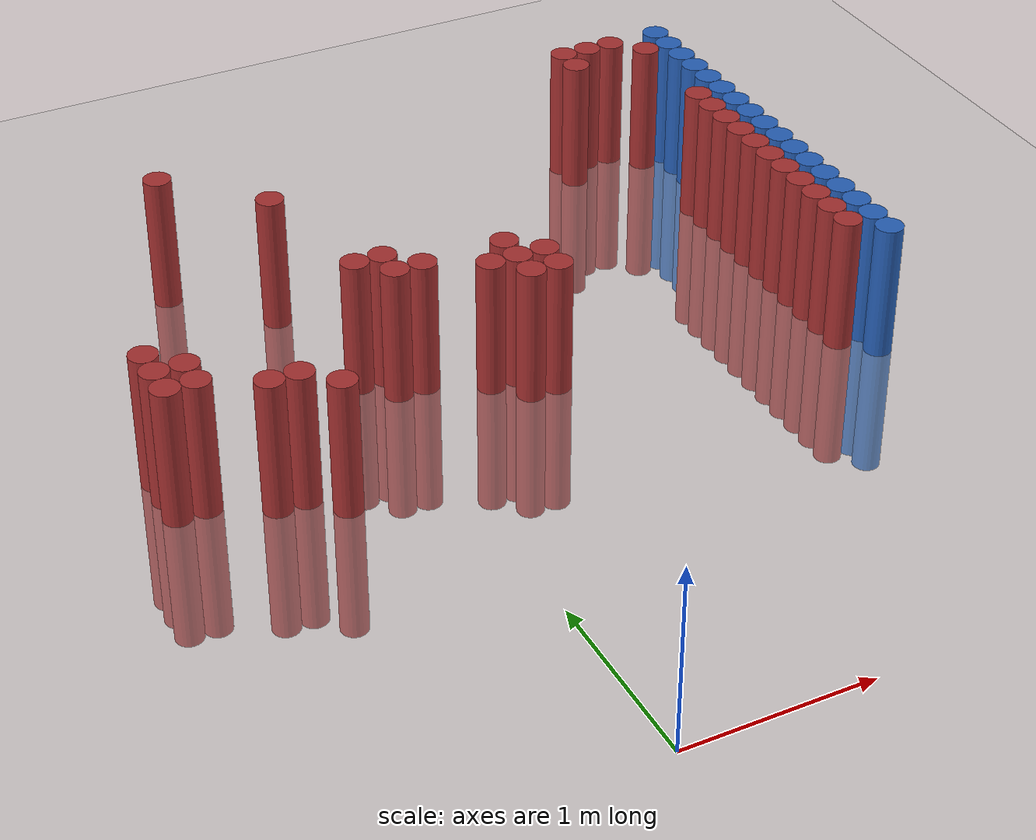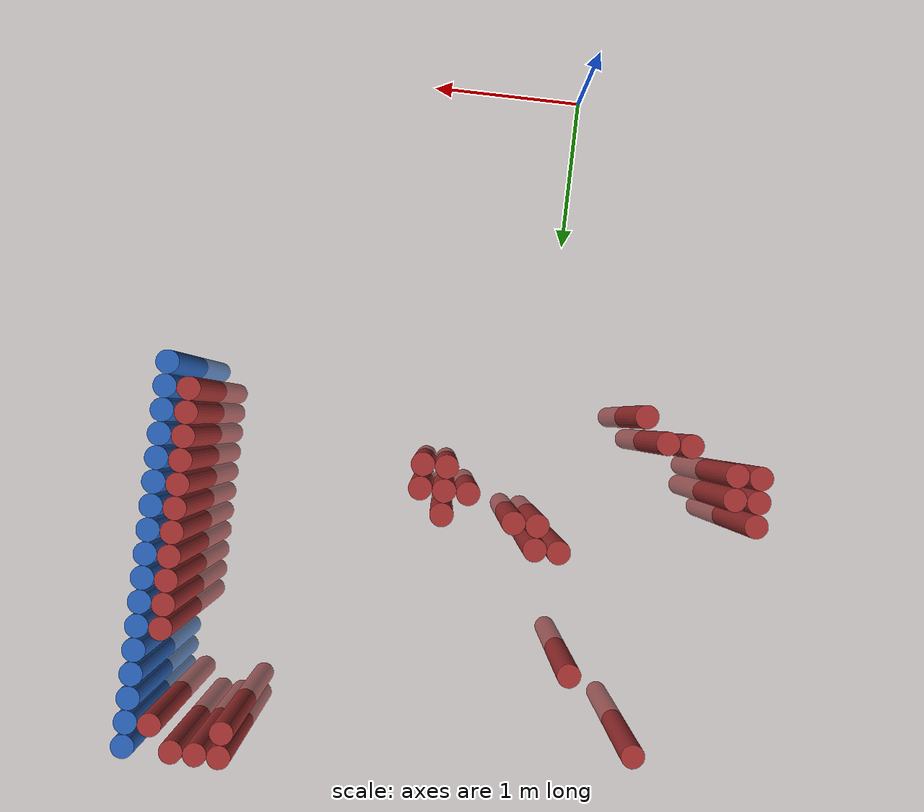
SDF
<sdf version="1.6">
 <world name="default">
  <model name="ground_plane">
   <static>1</static>
   <link name="link">
    <collision name="collision">
     <geometry><plane><normal>0 0 1</normal><size>100 100</size></plane></geometry>
     <surface><friction><ode><mu>100</mu><mu2>50</mu2></ode></friction></surface>
    </collision>
    <visual name="visual">
     <cast_shadows>0</cast_shadows>
     <geometry><plane><normal>0 0 1</normal><size>100 100</size></plane></geometry>
     <material>
      <script><uri>file://media/materials/scripts/gazebo.material</uri><name>Gazebo/Grey</name></script>
     </material>
    </visual>
   </link>
  </model>
  <model name="unit_cylinder_151">
   <static>1</static>
   <pose>-1.325000 2.425000 0.000000 0.000000 0.000000 0.000000</pose>
   <link name="link">
    <inertial>
     <mass>1</mass>
     <inertia><ixx>0.145833</ixx><ixy>0</ixy><ixz>0</ixz><iyy>0.145833</iyy><iyz>0</iyz><izz>0.125</izz></inertia>
    </inertial>
    <collision name="collision">
     <geometry><cylinder><radius>0.075000</radius><length>1.5</length></cylinder></geometry>
    </collision>
    <visual name="visual">
     <geometry><cylinder><radius>0.075000</radius><length>1.5</length></cylinder></geometry>
     <material>
      <ambient>0.648000 0.192000 0.192000 1</ambient>
      <diffuse>0.648000 0.192000 0.192000 1</diffuse>
     </material>
     <material>
      <script><name>Gazebo/Grey</name><uri>file://media/materials/scripts/gazebo.material</uri></script>
     </material>
    </visual>
   </link>
  </model>
  <model name="unit_cylinder_152">
   <static>1</static>
   <pose>-1.325000 2.575000 0.000000 0.000000 0.000000 0.000000</pose>
   <link name="link">
    <inertial>
     <mass>1</mass>
     <inertia><ixx>0.145833</ixx><ixy>0</ixy><ixz>0</ixz><iyy>0.145833</iyy><iyz>0</iyz><izz>0.125</izz></inertia>
    </inertial>
    <collision name="collision">
     <geometry><cylinder><radius>0.075000</radius><length>1.5</length></cylinder></geometry>
    </collision>
    <visual name="visual">
     <geometry><cylinder><radius>0.075000</radius><length>1.5</length></cylinder></geometry>
     <material>
      <ambient>0.648000 0.192000 0.192000 1</ambient>
      <diffuse>0.648000 0.192000 0.192000 1</diffuse>
     </material>
     <material>
      <script><name>Gazebo/Grey</name><uri>file://media/materials/scripts/gazebo.material</uri></script>
     </material>
    </visual>
   </link>
  </model>
  <model name="unit_cylinder_153">
   <static>1</static>
   <pose>-1.325000 2.725000 0.000000 0.000000 0.000000 0.000000</pose>
   <link name="link">
    <inertial>
     <mass>1</mass>
     <inertia><ixx>0.145833</ixx><ixy>0</ixy><ixz>0</ixz><iyy>0.145833</iyy><iyz>0</iyz><izz>0.125</izz></inertia>
    </inertial>
    <collision name="collision">
     <geometry><cylinder><radius>0.075000</radius><length>1.5</length></cylinder></geometry>
    </collision>
    <visual name="visual">
     <geometry><cylinder><radius>0.075000</radius><length>1.5</length></cylinder></geometry>
     <material>
      <ambient>0.648000 0.192000 0.192000 1</ambient>
      <diffuse>0.648000 0.192000 0.192000 1</diffuse>
     </material>
     <material>
      <script><name>Gazebo/Grey</name><uri>file://media/materials/scripts/gazebo.material</uri></script>
     </material>
    </visual>
   </link>
  </model>
  <model name="unit_cylinder_155">
   <static>1</static>
   <pose>-1.175000 2.425000 0.000000 0.000000 0.000000 0.000000</pose>
   <link name="link">
    <inertial>
     <mass>1</mass>
     <inertia><ixx>0.145833</ixx><ixy>0</ixy><ixz>0</ixz><iyy>0.145833</iyy><iyz>0</iyz><izz>0.125</izz></inertia>
    </inertial>
    <collision name="collision">
     <geometry><cylinder><radius>0.075000</radius><length>1.5</length></cylinder></geometry>
    </collision>
    <visual name="visual">
     <geometry><cylinder><radius>0.075000</radius><length>1.5</length></cylinder></geometry>
     <material>
      <ambient>0.648000 0.192000 0.192000 1</ambient>
      <diffuse>0.648000 0.192000 0.192000 1</diffuse>
     </material>
     <material>
      <script><name>Gazebo/Grey</name><uri>file://media/materials/scripts/gazebo.material</uri></script>
     </material>
    </visual>
   </link>
  </model>
  <model name="unit_cylinder_156">
   <static>1</static>
   <pose>-1.175000 2.575000 0.000000 0.000000 0.000000 0.000000</pose>
   <link name="link">
    <inertial>
     <mass>1</mass>
     <inertia><ixx>0.145833</ixx><ixy>0</ixy><ixz>0</ixz><iyy>0.145833</iyy><iyz>0</iyz><izz>0.125</izz></inertia>
    </inertial>
    <collision name="collision">
     <geometry><cylinder><radius>0.075000</radius><length>1.5</length></cylinder></geometry>
    </collision>
    <visual name="visual">
     <geometry><cylinder><radius>0.075000</radius><length>1.5</length></cylinder></geometry>
     <material>
      <ambient>0.648000 0.192000 0.192000 1</ambient>
      <diffuse>0.648000 0.192000 0.192000 1</diffuse>
     </material>
     <material>
      <script><name>Gazebo/Grey</name><uri>file://media/materials/scripts/gazebo.material</uri></script>
     </material>
    </visual>
   </link>
  </model>
  <model name="unit_cylinder_160">
   <static>1</static>
   <pose>-0.875000 2.275000 0.000000 0.000000 0.000000 0.000000</pose>
   <link name="link">
    <inertial>
     <mass>1</mass>
     <inertia><ixx>0.145833</ixx><ixy>0</ixy><ixz>0</ixz><iyy>0.145833</iyy><iyz>0</iyz><izz>0.125</izz></inertia>
    </inertial>
    <collision name="collision">
     <geometry><cylinder><radius>0.075000</radius><length>1.5</length></cylinder></geometry>
    </collision>
    <visual name="visual">
     <geometry><cylinder><radius>0.075000</radius><length>1.5</length></cylinder></geometry>
     <material>
      <ambient>0.648000 0.192000 0.192000 1</ambient>
      <diffuse>0.648000 0.192000 0.192000 1</diffuse>
     </material>
     <material>
      <script><name>Gazebo/Grey</name><uri>file://media/materials/scripts/gazebo.material</uri></script>
     </material>
    </visual>
   </link>
  </model>
  <model name="unit_cylinder_164">
   <static>1</static>
   <pose>-0.725000 2.275000 0.000000 0.000000 0.000000 0.000000</pose>
   <link name="link">
    <inertial>
     <mass>1</mass>
     <inertia><ixx>0.145833</ixx><ixy>0</ixy><ixz>0</ixz><iyy>0.145833</iyy><iyz>0</iyz><izz>0.125</izz></inertia>
    </inertial>
    <collision name="collision">
     <geometry><cylinder><radius>0.075000</radius><length>1.5</length></cylinder></geometry>
    </collision>
    <visual name="visual">
     <geometry><cylinder><radius>0.075000</radius><length>1.5</length></cylinder></geometry>
     <material>
      <ambient>0.648000 0.192000 0.192000 1</ambient>
      <diffuse>0.648000 0.192000 0.192000 1</diffuse>
     </material>
     <material>
      <script><name>Gazebo/Grey</name><uri>file://media/materials/scripts/gazebo.material</uri></script>
     </material>
    </visual>
   </link>
  </model>
  <model name="unit_cylinder_165">
   <static>1</static>
   <pose>-0.725000 4.225000 0.000000 0.000000 0.000000 0.000000</pose>
   <link name="link">
    <inertial>
     <mass>1</mass>
     <inertia><ixx>0.145833</ixx><ixy>0</ixy><ixz>0</ixz><iyy>0.145833</iyy><iyz>0</iyz><izz>0.125</izz></inertia>
    </inertial>
    <collision name="collision">
     <geometry><cylinder><radius>0.075000</radius><length>1.5</length></cylinder></geometry>
    </collision>
    <visual name="visual">
     <geometry><cylinder><radius>0.075000</radius><length>1.5</length></cylinder></geometry>
     <material>
      <ambient>0.648000 0.192000 0.192000 1</ambient>
      <diffuse>0.648000 0.192000 0.192000 1</diffuse>
     </material>
     <material>
      <script><name>Gazebo/Grey</name><uri>file://media/materials/scripts/gazebo.material</uri></script>
     </material>
    </visual>
   </link>
  </model>
  <model name="unit_cylinder_168">
   <static>1</static>
   <pose>-0.575000 2.125000 0.000000 0.000000 0.000000 0.000000</pose>
   <link name="link">
    <inertial>
     <mass>1</mass>
     <inertia><ixx>0.145833</ixx><ixy>0</ixy><ixz>0</ixz><iyy>0.145833</iyy><iyz>0</iyz><izz>0.125</izz></inertia>
    </inertial>
    <collision name="collision">
     <geometry><cylinder><radius>0.075000</radius><length>1.5</length></cylinder></geometry>
    </collision>
    <visual name="visual">
     <geometry><cylinder><radius>0.075000</radius><length>1.5</length></cylinder></geometry>
     <material>
      <ambient>0.648000 0.192000 0.192000 1</ambient>
      <diffuse>0.648000 0.192000 0.192000 1</diffuse>
     </material>
     <material>
      <script><name>Gazebo/Grey</name><uri>file://media/materials/scripts/gazebo.material</uri></script>
     </material>
    </visual>
   </link>
  </model>
  <model name="unit_cylinder_173">
   <static>1</static>
   <pose>-0.275000 3.775000 0.000000 0.000000 0.000000 0.000000</pose>
   <link name="link">
    <inertial>
     <mass>1</mass>
     <inertia><ixx>0.145833</ixx><ixy>0</ixy><ixz>0</ixz><iyy>0.145833</iyy><iyz>0</iyz><izz>0.125</izz></inertia>
    </inertial>
    <collision name="collision">
     <geometry><cylinder><radius>0.075000</radius><length>1.5</length></cylinder></geometry>
    </collision>
    <visual name="visual">
     <geometry><cylinder><radius>0.075000</radius><length>1.5</length></cylinder></geometry>
     <material>
      <ambient>0.648000 0.192000 0.192000 1</ambient>
      <diffuse>0.648000 0.192000 0.192000 1</diffuse>
     </material>
     <material>
      <script><name>Gazebo/Grey</name><uri>file://media/materials/scripts/gazebo.material</uri></script>
     </material>
    </visual>
   </link>
  </model>
  <model name="unit_cylinder_179">
   <static>1</static>
   <pose>-0.125000 3.025000 0.000000 0.000000 0.000000 0.000000</pose>
   <link name="link">
    <inertial>
     <mass>1</mass>
     <inertia><ixx>0.145833</ixx><ixy>0</ixy><ixz>0</ixz><iyy>0.145833</iyy><iyz>0</iyz><izz>0.125</izz></inertia>
    </inertial>
    <collision name="collision">
     <geometry><cylinder><radius>0.075000</radius><length>1.5</length></cylinder></geometry>
    </collision>
    <visual name="visual">
     <geometry><cylinder><radius>0.075000</radius><length>1.5</length></cylinder></geometry>
     <material>
      <ambient>0.648000 0.192000 0.192000 1</ambient>
      <diffuse>0.648000 0.192000 0.192000 1</diffuse>
     </material>
     <material>
      <script><name>Gazebo/Grey</name><uri>file://media/materials/scripts/gazebo.material</uri></script>
     </material>
    </visual>
   </link>
  </model>
  <model name="unit_cylinder_185">
   <static>1</static>
   <pose>0.025000 2.875000 0.000000 0.000000 0.000000 0.000000</pose>
   <link name="link">
    <inertial>
     <mass>1</mass>
     <inertia><ixx>0.145833</ixx><ixy>0</ixy><ixz>0</ixz><iyy>0.145833</iyy><iyz>0</iyz><izz>0.125</izz></inertia>
    </inertial>
    <collision name="collision">
     <geometry><cylinder><radius>0.075000</radius><length>1.5</length></cylinder></geometry>
    </collision>
    <visual name="visual">
     <geometry><cylinder><radius>0.075000</radius><length>1.5</length></cylinder></geometry>
     <material>
      <ambient>0.648000 0.192000 0.192000 1</ambient>
      <diffuse>0.648000 0.192000 0.192000 1</diffuse>
     </material>
     <material>
      <script><name>Gazebo/Grey</name><uri>file://media/materials/scripts/gazebo.material</uri></script>
     </material>
    </visual>
   </link>
  </model>
  <model name="unit_cylinder_186">
   <static>1</static>
   <pose>0.025000 3.025000 0.000000 0.000000 0.000000 0.000000</pose>
   <link name="link">
    <inertial>
     <mass>1</mass>
     <inertia><ixx>0.145833</ixx><ixy>0</ixy><ixz>0</ixz><iyy>0.145833</iyy><iyz>0</iyz><izz>0.125</izz></inertia>
    </inertial>
    <collision name="collision">
     <geometry><cylinder><radius>0.075000</radius><length>1.5</length></cylinder></geometry>
    </collision>
    <visual name="visual">
     <geometry><cylinder><radius>0.075000</radius><length>1.5</length></cylinder></geometry>
     <material>
      <ambient>0.648000 0.192000 0.192000 1</ambient>
      <diffuse>0.648000 0.192000 0.192000 1</diffuse>
     </material>
     <material>
      <script><name>Gazebo/Grey</name><uri>file://media/materials/scripts/gazebo.material</uri></script>
     </material>
    </visual>
   </link>
  </model>
  <model name="unit_cylinder_188">
   <static>1</static>
   <pose>0.175000 2.875000 0.000000 0.000000 0.000000 0.000000</pose>
   <link name="link">
    <inertial>
     <mass>1</mass>
     <inertia><ixx>0.145833</ixx><ixy>0</ixy><ixz>0</ixz><iyy>0.145833</iyy><iyz>0</iyz><izz>0.125</izz></inertia>
    </inertial>
    <collision name="collision">
     <geometry><cylinder><radius>0.075000</radius><length>1.5</length></cylinder></geometry>
    </collision>
    <visual name="visual">
     <geometry><cylinder><radius>0.075000</radius><length>1.5</length></cylinder></geometry>
     <material>
      <ambient>0.648000 0.192000 0.192000 1</ambient>
      <diffuse>0.648000 0.192000 0.192000 1</diffuse>
     </material>
     <material>
      <script><name>Gazebo/Grey</name><uri>file://media/materials/scripts/gazebo.material</uri></script>
     </material>
    </visual>
   </link>
  </model>
  <model name="unit_cylinder_190">
   <static>1</static>
   <pose>0.475000 2.725000 0.000000 0.000000 0.000000 0.000000</pose>
   <link name="link">
    <inertial>
     <mass>1</mass>
     <inertia><ixx>0.145833</ixx><ixy>0</ixy><ixz>0</ixz><iyy>0.145833</iyy><iyz>0</iyz><izz>0.125</izz></inertia>
    </inertial>
    <collision name="collision">
     <geometry><cylinder><radius>0.075000</radius><length>1.5</length></cylinder></geometry>
    </collision>
    <visual name="visual">
     <geometry><cylinder><radius>0.075000</radius><length>1.5</length></cylinder></geometry>
     <material>
      <ambient>0.648000 0.192000 0.192000 1</ambient>
      <diffuse>0.648000 0.192000 0.192000 1</diffuse>
     </material>
     <material>
      <script><name>Gazebo/Grey</name><uri>file://media/materials/scripts/gazebo.material</uri></script>
     </material>
    </visual>
   </link>
  </model>
  <model name="unit_cylinder_191">
   <static>1</static>
   <pose>0.625000 2.575000 0.000000 0.000000 0.000000 0.000000</pose>
   <link name="link">
    <inertial>
     <mass>1</mass>
     <inertia><ixx>0.145833</ixx><ixy>0</ixy><ixz>0</ixz><iyy>0.145833</iyy><iyz>0</iyz><izz>0.125</izz></inertia>
    </inertial>
    <collision name="collision">
     <geometry><cylinder><radius>0.075000</radius><length>1.5</length></cylinder></geometry>
    </collision>
    <visual name="visual">
     <geometry><cylinder><radius>0.075000</radius><length>1.5</length></cylinder></geometry>
     <material>
      <ambient>0.648000 0.192000 0.192000 1</ambient>
      <diffuse>0.648000 0.192000 0.192000 1</diffuse>
     </material>
     <material>
      <script><name>Gazebo/Grey</name><uri>file://media/materials/scripts/gazebo.material</uri></script>
     </material>
    </visual>
   </link>
  </model>
  <model name="unit_cylinder_192">
   <static>1</static>
   <pose>0.625000 2.725000 0.000000 0.000000 0.000000 0.000000</pose>
   <link name="link">
    <inertial>
     <mass>1</mass>
     <inertia><ixx>0.145833</ixx><ixy>0</ixy><ixz>0</ixz><iyy>0.145833</iyy><iyz>0</iyz><izz>0.125</izz></inertia>
    </inertial>
    <collision name="collision">
     <geometry><cylinder><radius>0.075000</radius><length>1.5</length></cylinder></geometry>
    </collision>
    <visual name="visual">
     <geometry><cylinder><radius>0.075000</radius><length>1.5</length></cylinder></geometry>
     <material>
      <ambient>0.648000 0.192000 0.192000 1</ambient>
      <diffuse>0.648000 0.192000 0.192000 1</diffuse>
     </material>
     <material>
      <script><name>Gazebo/Grey</name><uri>file://media/materials/scripts/gazebo.material</uri></script>
     </material>
    </visual>
   </link>
  </model>
  <model name="unit_cylinder_193">
   <static>1</static>
   <pose>0.625000 2.875000 0.000000 0.000000 0.000000 0.000000</pose>
   <link name="link">
    <inertial>
     <mass>1</mass>
     <inertia><ixx>0.145833</ixx><ixy>0</ixy><ixz>0</ixz><iyy>0.145833</iyy><iyz>0</iyz><izz>0.125</izz></inertia>
    </inertial>
    <collision name="collision">
     <geometry><cylinder><radius>0.075000</radius><length>1.5</length></cylinder></geometry>
    </collision>
    <visual name="visual">
     <geometry><cylinder><radius>0.075000</radius><length>1.5</length></cylinder></geometry>
     <material>
      <ambient>0.648000 0.192000 0.192000 1</ambient>
      <diffuse>0.648000 0.192000 0.192000 1</diffuse>
     </material>
     <material>
      <script><name>Gazebo/Grey</name><uri>file://media/materials/scripts/gazebo.material</uri></script>
     </material>
    </visual>
   </link>
  </model>
  <model name="unit_cylinder_194">
   <static>1</static>
   <pose>0.775000 2.575000 0.000000 0.000000 0.000000 0.000000</pose>
   <link name="link">
    <inertial>
     <mass>1</mass>
     <inertia><ixx>0.145833</ixx><ixy>0</ixy><ixz>0</ixz><iyy>0.145833</iyy><iyz>0</iyz><izz>0.125</izz></inertia>
    </inertial>
    <collision name="collision">
     <geometry><cylinder><radius>0.075000</radius><length>1.5</length></cylinder></geometry>
    </collision>
    <visual name="visual">
     <geometry><cylinder><radius>0.075000</radius><length>1.5</length></cylinder></geometry>
     <material>
      <ambient>0.648000 0.192000 0.192000 1</ambient>
      <diffuse>0.648000 0.192000 0.192000 1</diffuse>
     </material>
     <material>
      <script><name>Gazebo/Grey</name><uri>file://media/materials/scripts/gazebo.material</uri></script>
     </material>
    </visual>
   </link>
  </model>
  <model name="unit_cylinder_195">
   <static>1</static>
   <pose>0.775000 2.725000 0.000000 0.000000 0.000000 0.000000</pose>
   <link name="link">
    <inertial>
     <mass>1</mass>
     <inertia><ixx>0.145833</ixx><ixy>0</ixy><ixz>0</ixz><iyy>0.145833</iyy><iyz>0</iyz><izz>0.125</izz></inertia>
    </inertial>
    <collision name="collision">
     <geometry><cylinder><radius>0.075000</radius><length>1.5</length></cylinder></geometry>
    </collision>
    <visual name="visual">
     <geometry><cylinder><radius>0.075000</radius><length>1.5</length></cylinder></geometry>
     <material>
      <ambient>0.648000 0.192000 0.192000 1</ambient>
      <diffuse>0.648000 0.192000 0.192000 1</diffuse>
     </material>
     <material>
      <script><name>Gazebo/Grey</name><uri>file://media/materials/scripts/gazebo.material</uri></script>
     </material>
    </visual>
   </link>
  </model>
  <model name="unit_cylinder_199">
   <static>1</static>
   <pose>1.825000 4.375000 0.000000 0.000000 0.000000 0.000000</pose>
   <link name="link">
    <inertial>
     <mass>1</mass>
     <inertia><ixx>0.145833</ixx><ixy>0</ixy><ixz>0</ixz><iyy>0.145833</iyy><iyz>0</iyz><izz>0.125</izz></inertia>
    </inertial>
    <collision name="collision">
     <geometry><cylinder><radius>0.075000</radius><length>1.5</length></cylinder></geometry>
    </collision>
    <visual name="visual">
     <geometry><cylinder><radius>0.075000</radius><length>1.5</length></cylinder></geometry>
     <material>
      <ambient>0.648000 0.192000 0.192000 1</ambient>
      <diffuse>0.648000 0.192000 0.192000 1</diffuse>
     </material>
     <material>
      <script><name>Gazebo/Grey</name><uri>file://media/materials/scripts/gazebo.material</uri></script>
     </material>
    </visual>
   </link>
  </model>
  <model name="unit_cylinder_200">
   <static>1</static>
   <pose>1.825000 4.525000 0.000000 0.000000 0.000000 0.000000</pose>
   <link name="link">
    <inertial>
     <mass>1</mass>
     <inertia><ixx>0.145833</ixx><ixy>0</ixy><ixz>0</ixz><iyy>0.145833</iyy><iyz>0</iyz><izz>0.125</izz></inertia>
    </inertial>
    <collision name="collision">
     <geometry><cylinder><radius>0.075000</radius><length>1.5</length></cylinder></geometry>
    </collision>
    <visual name="visual">
     <geometry><cylinder><radius>0.075000</radius><length>1.5</length></cylinder></geometry>
     <material>
      <ambient>0.648000 0.192000 0.192000 1</ambient>
      <diffuse>0.648000 0.192000 0.192000 1</diffuse>
     </material>
     <material>
      <script><name>Gazebo/Grey</name><uri>file://media/materials/scripts/gazebo.material</uri></script>
     </material>
    </visual>
   </link>
  </model>
  <model name="unit_cylinder_201">
   <static>1</static>
   <pose>1.975000 4.525000 0.000000 0.000000 0.000000 0.000000</pose>
   <link name="link">
    <inertial>
     <mass>1</mass>
     <inertia><ixx>0.145833</ixx><ixy>0</ixy><ixz>0</ixz><iyy>0.145833</iyy><iyz>0</iyz><izz>0.125</izz></inertia>
    </inertial>
    <collision name="collision">
     <geometry><cylinder><radius>0.075000</radius><length>1.5</length></cylinder></geometry>
    </collision>
    <visual name="visual">
     <geometry><cylinder><radius>0.075000</radius><length>1.5</length></cylinder></geometry>
     <material>
      <ambient>0.648000 0.192000 0.192000 1</ambient>
      <diffuse>0.648000 0.192000 0.192000 1</diffuse>
     </material>
     <material>
      <script><name>Gazebo/Grey</name><uri>file://media/materials/scripts/gazebo.material</uri></script>
     </material>
    </visual>
   </link>
  </model>
  <model name="unit_cylinder_210">
   <static>1</static>
   <pose>2.125000 4.525000 0.000000 0.000000 0.000000 0.000000</pose>
   <link name="link">
    <inertial>
     <mass>1</mass>
     <inertia><ixx>0.145833</ixx><ixy>0</ixy><ixz>0</ixz><iyy>0.145833</iyy><iyz>0</iyz><izz>0.125</izz></inertia>
    </inertial>
    <collision name="collision">
     <geometry><cylinder><radius>0.075000</radius><length>1.5</length></cylinder></geometry>
    </collision>
    <visual name="visual">
     <geometry><cylinder><radius>0.075000</radius><length>1.5</length></cylinder></geometry>
     <material>
      <ambient>0.648000 0.192000 0.192000 1</ambient>
      <diffuse>0.648000 0.192000 0.192000 1</diffuse>
     </material>
     <material>
      <script><name>Gazebo/Grey</name><uri>file://media/materials/scripts/gazebo.material</uri></script>
     </material>
    </visual>
   </link>
  </model>
  <model name="unit_cylinder_219">
   <static>1</static>
   <pose>2.275000 2.275000 0.000000 0.000000 0.000000 0.000000</pose>
   <link name="link">
    <inertial>
     <mass>1</mass>
     <inertia><ixx>0.145833</ixx><ixy>0</ixy><ixz>0</ixz><iyy>0.145833</iyy><iyz>0</iyz><izz>0.125</izz></inertia>
    </inertial>
    <collision name="collision">
     <geometry><cylinder><radius>0.075000</radius><length>1.5</length></cylinder></geometry>
    </collision>
    <visual name="visual">
     <geometry><cylinder><radius>0.075000</radius><length>1.5</length></cylinder></geometry>
     <material>
      <ambient>0.648000 0.192000 0.192000 1</ambient>
      <diffuse>0.648000 0.192000 0.192000 1</diffuse>
     </material>
     <material>
      <script><name>Gazebo/Grey</name><uri>file://media/materials/scripts/gazebo.material</uri></script>
     </material>
    </visual>
   </link>
  </model>
  <model name="unit_cylinder_220">
   <static>1</static>
   <pose>2.275000 2.425000 0.000000 0.000000 0.000000 0.000000</pose>
   <link name="link">
    <inertial>
     <mass>1</mass>
     <inertia><ixx>0.145833</ixx><ixy>0</ixy><ixz>0</ixz><iyy>0.145833</iyy><iyz>0</iyz><izz>0.125</izz></inertia>
    </inertial>
    <collision name="collision">
     <geometry><cylinder><radius>0.075000</radius><length>1.5</length></cylinder></geometry>
    </collision>
    <visual name="visual">
     <geometry><cylinder><radius>0.075000</radius><length>1.5</length></cylinder></geometry>
     <material>
      <ambient>0.648000 0.192000 0.192000 1</ambient>
      <diffuse>0.648000 0.192000 0.192000 1</diffuse>
     </material>
     <material>
      <script><name>Gazebo/Grey</name><uri>file://media/materials/scripts/gazebo.material</uri></script>
     </material>
    </visual>
   </link>
  </model>
  <model name="unit_cylinder_221">
   <static>1</static>
   <pose>2.275000 2.575000 0.000000 0.000000 0.000000 0.000000</pose>
   <link name="link">
    <inertial>
     <mass>1</mass>
     <inertia><ixx>0.145833</ixx><ixy>0</ixy><ixz>0</ixz><iyy>0.145833</iyy><iyz>0</iyz><izz>0.125</izz></inertia>
    </inertial>
    <collision name="collision">
     <geometry><cylinder><radius>0.075000</radius><length>1.5</length></cylinder></geometry>
    </collision>
    <visual name="visual">
     <geometry><cylinder><radius>0.075000</radius><length>1.5</length></cylinder></geometry>
     <material>
      <ambient>0.648000 0.192000 0.192000 1</ambient>
      <diffuse>0.648000 0.192000 0.192000 1</diffuse>
     </material>
     <material>
      <script><name>Gazebo/Grey</name><uri>file://media/materials/scripts/gazebo.material</uri></script>
     </material>
    </visual>
   </link>
  </model>
  <model name="unit_cylinder_222">
   <static>1</static>
   <pose>2.275000 2.725000 0.000000 0.000000 0.000000 0.000000</pose>
   <link name="link">
    <inertial>
     <mass>1</mass>
     <inertia><ixx>0.145833</ixx><ixy>0</ixy><ixz>0</ixz><iyy>0.145833</iyy><iyz>0</iyz><izz>0.125</izz></inertia>
    </inertial>
    <collision name="collision">
     <geometry><cylinder><radius>0.075000</radius><length>1.5</length></cylinder></geometry>
    </collision>
    <visual name="visual">
     <geometry><cylinder><radius>0.075000</radius><length>1.5</length></cylinder></geometry>
     <material>
      <ambient>0.648000 0.192000 0.192000 1</ambient>
      <diffuse>0.648000 0.192000 0.192000 1</diffuse>
     </material>
     <material>
      <script><name>Gazebo/Grey</name><uri>file://media/materials/scripts/gazebo.material</uri></script>
     </material>
    </visual>
   </link>
  </model>
  <model name="unit_cylinder_223">
   <static>1</static>
   <pose>2.275000 2.875000 0.000000 0.000000 0.000000 0.000000</pose>
   <link name="link">
    <inertial>
     <mass>1</mass>
     <inertia><ixx>0.145833</ixx><ixy>0</ixy><ixz>0</ixz><iyy>0.145833</iyy><iyz>0</iyz><izz>0.125</izz></inertia>
    </inertial>
    <collision name="collision">
     <geometry><cylinder><radius>0.075000</radius><length>1.5</length></cylinder></geometry>
    </collision>
    <visual name="visual">
     <geometry><cylinder><radius>0.075000</radius><length>1.5</length></cylinder></geometry>
     <material>
      <ambient>0.648000 0.192000 0.192000 1</ambient>
      <diffuse>0.648000 0.192000 0.192000 1</diffuse>
     </material>
     <material>
      <script><name>Gazebo/Grey</name><uri>file://media/materials/scripts/gazebo.material</uri></script>
     </material>
    </visual>
   </link>
  </model>
  <model name="unit_cylinder_224">
   <static>1</static>
   <pose>2.275000 3.025000 0.000000 0.000000 0.000000 0.000000</pose>
   <link name="link">
    <inertial>
     <mass>1</mass>
     <inertia><ixx>0.145833</ixx><ixy>0</ixy><ixz>0</ixz><iyy>0.145833</iyy><iyz>0</iyz><izz>0.125</izz></inertia>
    </inertial>
    <collision name="collision">
     <geometry><cylinder><radius>0.075000</radius><length>1.5</length></cylinder></geometry>
    </collision>
    <visual name="visual">
     <geometry><cylinder><radius>0.075000</radius><length>1.5</length></cylinder></geometry>
     <material>
      <ambient>0.648000 0.192000 0.192000 1</ambient>
      <diffuse>0.648000 0.192000 0.192000 1</diffuse>
     </material>
     <material>
      <script><name>Gazebo/Grey</name><uri>file://media/materials/scripts/gazebo.material</uri></script>
     </material>
    </visual>
   </link>
  </model>
  <model name="unit_cylinder_225">
   <static>1</static>
   <pose>2.275000 3.175000 0.000000 0.000000 0.000000 0.000000</pose>
   <link name="link">
    <inertial>
     <mass>1</mass>
     <inertia><ixx>0.145833</ixx><ixy>0</ixy><ixz>0</ixz><iyy>0.145833</iyy><iyz>0</iyz><izz>0.125</izz></inertia>
    </inertial>
    <collision name="collision">
     <geometry><cylinder><radius>0.075000</radius><length>1.5</length></cylinder></geometry>
    </collision>
    <visual name="visual">
     <geometry><cylinder><radius>0.075000</radius><length>1.5</length></cylinder></geometry>
     <material>
      <ambient>0.648000 0.192000 0.192000 1</ambient>
      <diffuse>0.648000 0.192000 0.192000 1</diffuse>
     </material>
     <material>
      <script><name>Gazebo/Grey</name><uri>file://media/materials/scripts/gazebo.material</uri></script>
     </material>
    </visual>
   </link>
  </model>
  <model name="unit_cylinder_226">
   <static>1</static>
   <pose>2.275000 3.325000 0.000000 0.000000 0.000000 0.000000</pose>
   <link name="link">
    <inertial>
     <mass>1</mass>
     <inertia><ixx>0.145833</ixx><ixy>0</ixy><ixz>0</ixz><iyy>0.145833</iyy><iyz>0</iyz><izz>0.125</izz></inertia>
    </inertial>
    <collision name="collision">
     <geometry><cylinder><radius>0.075000</radius><length>1.5</length></cylinder></geometry>
    </collision>
    <visual name="visual">
     <geometry><cylinder><radius>0.075000</radius><length>1.5</length></cylinder></geometry>
     <material>
      <ambient>0.648000 0.192000 0.192000 1</ambient>
      <diffuse>0.648000 0.192000 0.192000 1</diffuse>
     </material>
     <material>
      <script><name>Gazebo/Grey</name><uri>file://media/materials/scripts/gazebo.material</uri></script>
     </material>
    </visual>
   </link>
  </model>
  <model name="unit_cylinder_227">
   <static>1</static>
   <pose>2.275000 3.475000 0.000000 0.000000 0.000000 0.000000</pose>
   <link name="link">
    <inertial>
     <mass>1</mass>
     <inertia><ixx>0.145833</ixx><ixy>0</ixy><ixz>0</ixz><iyy>0.145833</iyy><iyz>0</iyz><izz>0.125</izz></inertia>
    </inertial>
    <collision name="collision">
     <geometry><cylinder><radius>0.075000</radius><length>1.5</length></cylinder></geometry>
    </collision>
    <visual name="visual">
     <geometry><cylinder><radius>0.075000</radius><length>1.5</length></cylinder></geometry>
     <material>
      <ambient>0.648000 0.192000 0.192000 1</ambient>
      <diffuse>0.648000 0.192000 0.192000 1</diffuse>
     </material>
     <material>
      <script><name>Gazebo/Grey</name><uri>file://media/materials/scripts/gazebo.material</uri></script>
     </material>
    </visual>
   </link>
  </model>
  <model name="unit_cylinder_228">
   <static>1</static>
   <pose>2.275000 3.625000 0.000000 0.000000 0.000000 0.000000</pose>
   <link name="link">
    <inertial>
     <mass>1</mass>
     <inertia><ixx>0.145833</ixx><ixy>0</ixy><ixz>0</ixz><iyy>0.145833</iyy><iyz>0</iyz><izz>0.125</izz></inertia>
    </inertial>
    <collision name="collision">
     <geometry><cylinder><radius>0.075000</radius><length>1.5</length></cylinder></geometry>
    </collision>
    <visual name="visual">
     <geometry><cylinder><radius>0.075000</radius><length>1.5</length></cylinder></geometry>
     <material>
      <ambient>0.648000 0.192000 0.192000 1</ambient>
      <diffuse>0.648000 0.192000 0.192000 1</diffuse>
     </material>
     <material>
      <script><name>Gazebo/Grey</name><uri>file://media/materials/scripts/gazebo.material</uri></script>
     </material>
    </visual>
   </link>
  </model>
  <model name="unit_cylinder_229">
   <static>1</static>
   <pose>2.275000 3.775000 0.000000 0.000000 0.000000 0.000000</pose>
   <link name="link">
    <inertial>
     <mass>1</mass>
     <inertia><ixx>0.145833</ixx><ixy>0</ixy><ixz>0</ixz><iyy>0.145833</iyy><iyz>0</iyz><izz>0.125</izz></inertia>
    </inertial>
    <collision name="collision">
     <geometry><cylinder><radius>0.075000</radius><length>1.5</length></cylinder></geometry>
    </collision>
    <visual name="visual">
     <geometry><cylinder><radius>0.075000</radius><length>1.5</length></cylinder></geometry>
     <material>
      <ambient>0.648000 0.192000 0.192000 1</ambient>
      <diffuse>0.648000 0.192000 0.192000 1</diffuse>
     </material>
     <material>
      <script><name>Gazebo/Grey</name><uri>file://media/materials/scripts/gazebo.material</uri></script>
     </material>
    </visual>
   </link>
  </model>
  <model name="unit_cylinder_230">
   <static>1</static>
   <pose>2.275000 4.375000 0.000000 0.000000 0.000000 0.000000</pose>
   <link name="link">
    <inertial>
     <mass>1</mass>
     <inertia><ixx>0.145833</ixx><ixy>0</ixy><ixz>0</ixz><iyy>0.145833</iyy><iyz>0</iyz><izz>0.125</izz></inertia>
    </inertial>
    <collision name="collision">
     <geometry><cylinder><radius>0.075000</radius><length>1.5</length></cylinder></geometry>
    </collision>
    <visual name="visual">
     <geometry><cylinder><radius>0.075000</radius><length>1.5</length></cylinder></geometry>
     <material>
      <ambient>0.648000 0.192000 0.192000 1</ambient>
      <diffuse>0.648000 0.192000 0.192000 1</diffuse>
     </material>
     <material>
      <script><name>Gazebo/Grey</name><uri>file://media/materials/scripts/gazebo.material</uri></script>
     </material>
    </visual>
   </link>
  </model>
  <model name="unit_cylinder_244">
   <static>1</static>
   <pose>2.425000 2.125000 0.000000 0.000000 0.000000 0.000000</pose>
   <link name="link">
    <inertial>
     <mass>1</mass>
     <inertia><ixx>0.145833</ixx><ixy>0</ixy><ixz>0</ixz><iyy>0.145833</iyy><iyz>0</iyz><izz>0.125</izz></inertia>
    </inertial>
    <collision name="collision">
     <geometry><cylinder><radius>0.075000</radius><length>1.5</length></cylinder></geometry>
    </collision>
    <visual name="visual">
     <geometry><cylinder><radius>0.075000</radius><length>1.5</length></cylinder></geometry>
     <material>
      <ambient>0.152000 0.379000 0.720000 1</ambient>
      <diffuse>0.152000 0.379000 0.720000 1</diffuse>
     </material>
     <material>
      <script><name>Gazebo/Grey</name><uri>file://media/materials/scripts/gazebo.material</uri></script>
     </material>
    </visual>
   </link>
  </model>
  <model name="unit_cylinder_245">
   <static>1</static>
   <pose>2.425000 2.275000 0.000000 0.000000 0.000000 0.000000</pose>
   <link name="link">
    <inertial>
     <mass>1</mass>
     <inertia><ixx>0.145833</ixx><ixy>0</ixy><ixz>0</ixz><iyy>0.145833</iyy><iyz>0</iyz><izz>0.125</izz></inertia>
    </inertial>
    <collision name="collision">
     <geometry><cylinder><radius>0.075000</radius><length>1.5</length></cylinder></geometry>
    </collision>
    <visual name="visual">
     <geometry><cylinder><radius>0.075000</radius><length>1.5</length></cylinder></geometry>
     <material>
      <ambient>0.152000 0.379000 0.720000 1</ambient>
      <diffuse>0.152000 0.379000 0.720000 1</diffuse>
     </material>
     <material>
      <script><name>Gazebo/Grey</name><uri>file://media/materials/scripts/gazebo.material</uri></script>
     </material>
    </visual>
   </link>
  </model>
  <model name="unit_cylinder_246">
   <static>1</static>
   <pose>2.425000 2.425000 0.000000 0.000000 0.000000 0.000000</pose>
   <link name="link">
    <inertial>
     <mass>1</mass>
     <inertia><ixx>0.145833</ixx><ixy>0</ixy><ixz>0</ixz><iyy>0.145833</iyy><iyz>0</iyz><izz>0.125</izz></inertia>
    </inertial>
    <collision name="collision">
     <geometry><cylinder><radius>0.075000</radius><length>1.5</length></cylinder></geometry>
    </collision>
    <visual name="visual">
     <geometry><cylinder><radius>0.075000</radius><length>1.5</length></cylinder></geometry>
     <material>
      <ambient>0.152000 0.379000 0.720000 1</ambient>
      <diffuse>0.152000 0.379000 0.720000 1</diffuse>
     </material>
     <material>
      <script><name>Gazebo/Grey</name><uri>file://media/materials/scripts/gazebo.material</uri></script>
     </material>
    </visual>
   </link>
  </model>
  <model name="unit_cylinder_247">
   <static>1</static>
   <pose>2.425000 2.575000 0.000000 0.000000 0.000000 0.000000</pose>
   <link name="link">
    <inertial>
     <mass>1</mass>
     <inertia><ixx>0.145833</ixx><ixy>0</ixy><ixz>0</ixz><iyy>0.145833</iyy><iyz>0</iyz><izz>0.125</izz></inertia>
    </inertial>
    <collision name="collision">
     <geometry><cylinder><radius>0.075000</radius><length>1.5</length></cylinder></geometry>
    </collision>
    <visual name="visual">
     <geometry><cylinder><radius>0.075000</radius><length>1.5</length></cylinder></geometry>
     <material>
      <ambient>0.152000 0.379000 0.720000 1</ambient>
      <diffuse>0.152000 0.379000 0.720000 1</diffuse>
     </material>
     <material>
      <script><name>Gazebo/Grey</name><uri>file://media/materials/scripts/gazebo.material</uri></script>
     </material>
    </visual>
   </link>
  </model>
  <model name="unit_cylinder_248">
   <static>1</static>
   <pose>2.425000 2.725000 0.000000 0.000000 0.000000 0.000000</pose>
   <link name="link">
    <inertial>
     <mass>1</mass>
     <inertia><ixx>0.145833</ixx><ixy>0</ixy><ixz>0</ixz><iyy>0.145833</iyy><iyz>0</iyz><izz>0.125</izz></inertia>
    </inertial>
    <collision name="collision">
     <geometry><cylinder><radius>0.075000</radius><length>1.5</length></cylinder></geometry>
    </collision>
    <visual name="visual">
     <geometry><cylinder><radius>0.075000</radius><length>1.5</length></cylinder></geometry>
     <material>
      <ambient>0.152000 0.379000 0.720000 1</ambient>
      <diffuse>0.152000 0.379000 0.720000 1</diffuse>
     </material>
     <material>
      <script><name>Gazebo/Grey</name><uri>file://media/materials/scripts/gazebo.material</uri></script>
     </material>
    </visual>
   </link>
  </model>
  <model name="unit_cylinder_249">
   <static>1</static>
   <pose>2.425000 2.875000 0.000000 0.000000 0.000000 0.000000</pose>
   <link name="link">
    <inertial>
     <mass>1</mass>
     <inertia><ixx>0.145833</ixx><ixy>0</ixy><ixz>0</ixz><iyy>0.145833</iyy><iyz>0</iyz><izz>0.125</izz></inertia>
    </inertial>
    <collision name="collision">
     <geometry><cylinder><radius>0.075000</radius><length>1.5</length></cylinder></geometry>
    </collision>
    <visual name="visual">
     <geometry><cylinder><radius>0.075000</radius><length>1.5</length></cylinder></geometry>
     <material>
      <ambient>0.152000 0.379000 0.720000 1</ambient>
      <diffuse>0.152000 0.379000 0.720000 1</diffuse>
     </material>
     <material>
      <script><name>Gazebo/Grey</name><uri>file://media/materials/scripts/gazebo.material</uri></script>
     </material>
    </visual>
   </link>
  </model>
  <model name="unit_cylinder_250">
   <static>1</static>
   <pose>2.425000 3.025000 0.000000 0.000000 0.000000 0.000000</pose>
   <link name="link">
    <inertial>
     <mass>1</mass>
     <inertia><ixx>0.145833</ixx><ixy>0</ixy><ixz>0</ixz><iyy>0.145833</iyy><iyz>0</iyz><izz>0.125</izz></inertia>
    </inertial>
    <collision name="collision">
     <geometry><cylinder><radius>0.075000</radius><length>1.5</length></cylinder></geometry>
    </collision>
    <visual name="visual">
     <geometry><cylinder><radius>0.075000</radius><length>1.5</length></cylinder></geometry>
     <material>
      <ambient>0.152000 0.379000 0.720000 1</ambient>
      <diffuse>0.152000 0.379000 0.720000 1</diffuse>
     </material>
     <material>
      <script><name>Gazebo/Grey</name><uri>file://media/materials/scripts/gazebo.material</uri></script>
     </material>
    </visual>
   </link>
  </model>
  <model name="unit_cylinder_251">
   <static>1</static>
   <pose>2.425000 3.175000 0.000000 0.000000 0.000000 0.000000</pose>
   <link name="link">
    <inertial>
     <mass>1</mass>
     <inertia><ixx>0.145833</ixx><ixy>0</ixy><ixz>0</ixz><iyy>0.145833</iyy><iyz>0</iyz><izz>0.125</izz></inertia>
    </inertial>
    <collision name="collision">
     <geometry><cylinder><radius>0.075000</radius><length>1.5</length></cylinder></geometry>
    </collision>
    <visual name="visual">
     <geometry><cylinder><radius>0.075000</radius><length>1.5</length></cylinder></geometry>
     <material>
      <ambient>0.152000 0.379000 0.720000 1</ambient>
      <diffuse>0.152000 0.379000 0.720000 1</diffuse>
     </material>
     <material>
      <script><name>Gazebo/Grey</name><uri>file://media/materials/scripts/gazebo.material</uri></script>
     </material>
    </visual>
   </link>
  </model>
  <model name="unit_cylinder_252">
   <static>1</static>
   <pose>2.425000 3.325000 0.000000 0.000000 0.000000 0.000000</pose>
   <link name="link">
    <inertial>
     <mass>1</mass>
     <inertia><ixx>0.145833</ixx><ixy>0</ixy><ixz>0</ixz><iyy>0.145833</iyy><iyz>0</iyz><izz>0.125</izz></inertia>
    </inertial>
    <collision name="collision">
     <geometry><cylinder><radius>0.075000</radius><length>1.5</length></cylinder></geometry>
    </collision>
    <visual name="visual">
     <geometry><cylinder><radius>0.075000</radius><length>1.5</length></cylinder></geometry>
     <material>
      <ambient>0.152000 0.379000 0.720000 1</ambient>
      <diffuse>0.152000 0.379000 0.720000 1</diffuse>
     </material>
     <material>
      <script><name>Gazebo/Grey</name><uri>file://media/materials/scripts/gazebo.material</uri></script>
     </material>
    </visual>
   </link>
  </model>
  <model name="unit_cylinder_253">
   <static>1</static>
   <pose>2.425000 3.475000 0.000000 0.000000 0.000000 0.000000</pose>
   <link name="link">
    <inertial>
     <mass>1</mass>
     <inertia><ixx>0.145833</ixx><ixy>0</ixy><ixz>0</ixz><iyy>0.145833</iyy><iyz>0</iyz><izz>0.125</izz></inertia>
    </inertial>
    <collision name="collision">
     <geometry><cylinder><radius>0.075000</radius><length>1.5</length></cylinder></geometry>
    </collision>
    <visual name="visual">
     <geometry><cylinder><radius>0.075000</radius><length>1.5</length></cylinder></geometry>
     <material>
      <ambient>0.152000 0.379000 0.720000 1</ambient>
      <diffuse>0.152000 0.379000 0.720000 1</diffuse>
     </material>
     <material>
      <script><name>Gazebo/Grey</name><uri>file://media/materials/scripts/gazebo.material</uri></script>
     </material>
    </visual>
   </link>
  </model>
  <model name="unit_cylinder_254">
   <static>1</static>
   <pose>2.425000 3.625000 0.000000 0.000000 0.000000 0.000000</pose>
   <link name="link">
    <inertial>
     <mass>1</mass>
     <inertia><ixx>0.145833</ixx><ixy>0</ixy><ixz>0</ixz><iyy>0.145833</iyy><iyz>0</iyz><izz>0.125</izz></inertia>
    </inertial>
    <collision name="collision">
     <geometry><cylinder><radius>0.075000</radius><length>1.5</length></cylinder></geometry>
    </collision>
    <visual name="visual">
     <geometry><cylinder><radius>0.075000</radius><length>1.5</length></cylinder></geometry>
     <material>
      <ambient>0.152000 0.379000 0.720000 1</ambient>
      <diffuse>0.152000 0.379000 0.720000 1</diffuse>
     </material>
     <material>
      <script><name>Gazebo/Grey</name><uri>file://media/materials/scripts/gazebo.material</uri></script>
     </material>
    </visual>
   </link>
  </model>
  <model name="unit_cylinder_255">
   <static>1</static>
   <pose>2.425000 3.775000 0.000000 0.000000 0.000000 0.000000</pose>
   <link name="link">
    <inertial>
     <mass>1</mass>
     <inertia><ixx>0.145833</ixx><ixy>0</ixy><ixz>0</ixz><iyy>0.145833</iyy><iyz>0</iyz><izz>0.125</izz></inertia>
    </inertial>
    <collision name="collision">
     <geometry><cylinder><radius>0.075000</radius><length>1.5</length></cylinder></geometry>
    </collision>
    <visual name="visual">
     <geometry><cylinder><radius>0.075000</radius><length>1.5</length></cylinder></geometry>
     <material>
      <ambient>0.152000 0.379000 0.720000 1</ambient>
      <diffuse>0.152000 0.379000 0.720000 1</diffuse>
     </material>
     <material>
      <script><name>Gazebo/Grey</name><uri>file://media/materials/scripts/gazebo.material</uri></script>
     </material>
    </visual>
   </link>
  </model>
  <model name="unit_cylinder_256">
   <static>1</static>
   <pose>2.425000 3.925000 0.000000 0.000000 0.000000 0.000000</pose>
   <link name="link">
    <inertial>
     <mass>1</mass>
     <inertia><ixx>0.145833</ixx><ixy>0</ixy><ixz>0</ixz><iyy>0.145833</iyy><iyz>0</iyz><izz>0.125</izz></inertia>
    </inertial>
    <collision name="collision">
     <geometry><cylinder><radius>0.075000</radius><length>1.5</length></cylinder></geometry>
    </collision>
    <visual name="visual">
     <geometry><cylinder><radius>0.075000</radius><length>1.5</length></cylinder></geometry>
     <material>
      <ambient>0.152000 0.379000 0.720000 1</ambient>
      <diffuse>0.152000 0.379000 0.720000 1</diffuse>
     </material>
     <material>
      <script><name>Gazebo/Grey</name><uri>file://media/materials/scripts/gazebo.material</uri></script>
     </material>
    </visual>
   </link>
  </model>
  <model name="unit_cylinder_257">
   <static>1</static>
   <pose>2.425000 4.075000 0.000000 0.000000 0.000000 0.000000</pose>
   <link name="link">
    <inertial>
     <mass>1</mass>
     <inertia><ixx>0.145833</ixx><ixy>0</ixy><ixz>0</ixz><iyy>0.145833</iyy><iyz>0</iyz><izz>0.125</izz></inertia>
    </inertial>
    <collision name="collision">
     <geometry><cylinder><radius>0.075000</radius><length>1.5</length></cylinder></geometry>
    </collision>
    <visual name="visual">
     <geometry><cylinder><radius>0.075000</radius><length>1.5</length></cylinder></geometry>
     <material>
      <ambient>0.152000 0.379000 0.720000 1</ambient>
      <diffuse>0.152000 0.379000 0.720000 1</diffuse>
     </material>
     <material>
      <script><name>Gazebo/Grey</name><uri>file://media/materials/scripts/gazebo.material</uri></script>
     </material>
    </visual>
   </link>
  </model>
  <model name="unit_cylinder_258">
   <static>1</static>
   <pose>2.425000 4.225000 0.000000 0.000000 0.000000 0.000000</pose>
   <link name="link">
    <inertial>
     <mass>1</mass>
     <inertia><ixx>0.145833</ixx><ixy>0</ixy><ixz>0</ixz><iyy>0.145833</iyy><iyz>0</iyz><izz>0.125</izz></inertia>
    </inertial>
    <collision name="collision">
     <geometry><cylinder><radius>0.075000</radius><length>1.5</length></cylinder></geometry>
    </collision>
    <visual name="visual">
     <geometry><cylinder><radius>0.075000</radius><length>1.5</length></cylinder></geometry>
     <material>
      <ambient>0.152000 0.379000 0.720000 1</ambient>
      <diffuse>0.152000 0.379000 0.720000 1</diffuse>
     </material>
     <material>
      <script><name>Gazebo/Grey</name><uri>file://media/materials/scripts/gazebo.material</uri></script>
     </material>
    </visual>
   </link>
  </model>
  <model name="unit_cylinder_259">
   <static>1</static>
   <pose>2.425000 4.375000 0.000000 0.000000 0.000000 0.000000</pose>
   <link name="link">
    <inertial>
     <mass>1</mass>
     <inertia><ixx>0.145833</ixx><ixy>0</ixy><ixz>0</ixz><iyy>0.145833</iyy><iyz>0</iyz><izz>0.125</izz></inertia>
    </inertial>
    <collision name="collision">
     <geometry><cylinder><radius>0.075000</radius><length>1.5</length></cylinder></geometry>
    </collision>
    <visual name="visual">
     <geometry><cylinder><radius>0.075000</radius><length>1.5</length></cylinder></geometry>
     <material>
      <ambient>0.152000 0.379000 0.720000 1</ambient>
      <diffuse>0.152000 0.379000 0.720000 1</diffuse>
     </material>
     <material>
      <script><name>Gazebo/Grey</name><uri>file://media/materials/scripts/gazebo.material</uri></script>
     </material>
    </visual>
   </link>
  </model>
  <model name="unit_cylinder_260">
   <static>1</static>
   <pose>2.425000 4.525000 0.000000 0.000000 0.000000 0.000000</pose>
   <link name="link">
    <inertial>
     <mass>1</mass>
     <inertia><ixx>0.145833</ixx><ixy>0</ixy><ixz>0</ixz><iyy>0.145833</iyy><iyz>0</iyz><izz>0.125</izz></inertia>
    </inertial>
    <collision name="collision">
     <geometry><cylinder><radius>0.075000</radius><length>1.5</length></cylinder></geometry>
    </collision>
    <visual name="visual">
     <geometry><cylinder><radius>0.075000</radius><length>1.5</length></cylinder></geometry>
     <material>
      <ambient>0.152000 0.379000 0.720000 1</ambient>
      <diffuse>0.152000 0.379000 0.720000 1</diffuse>
     </material>
     <material>
      <script><name>Gazebo/Grey</name><uri>file://media/materials/scripts/gazebo.material</uri></script>
     </material>
    </visual>
   </link>
  </model>
 </world>
</sdf>
